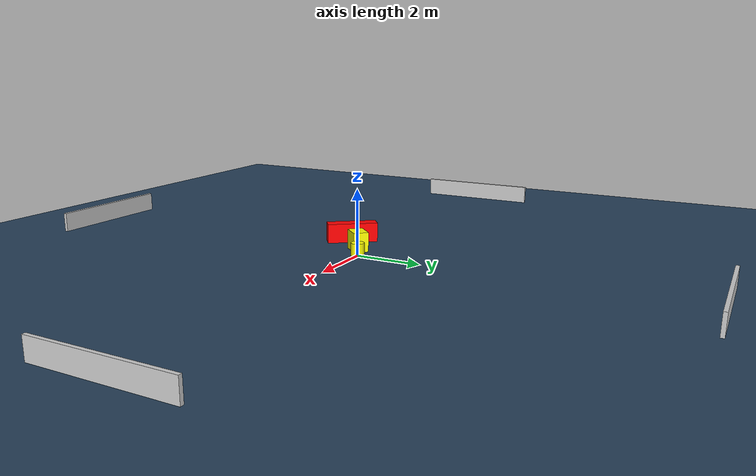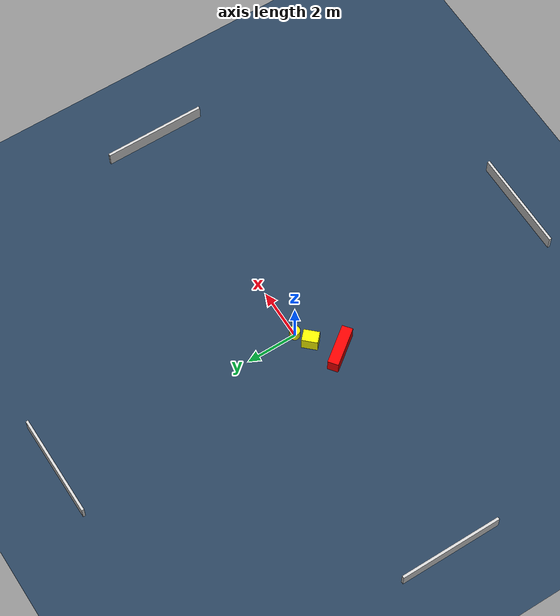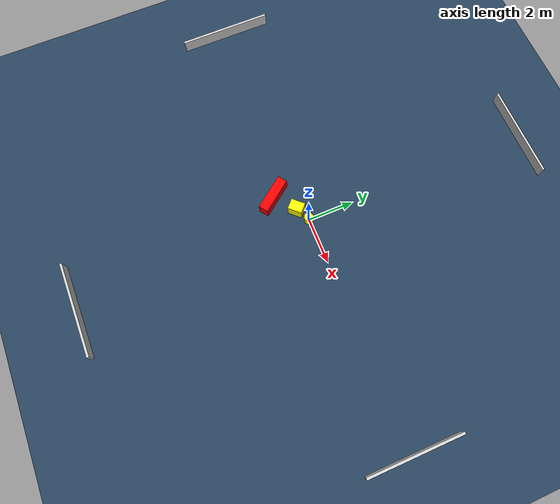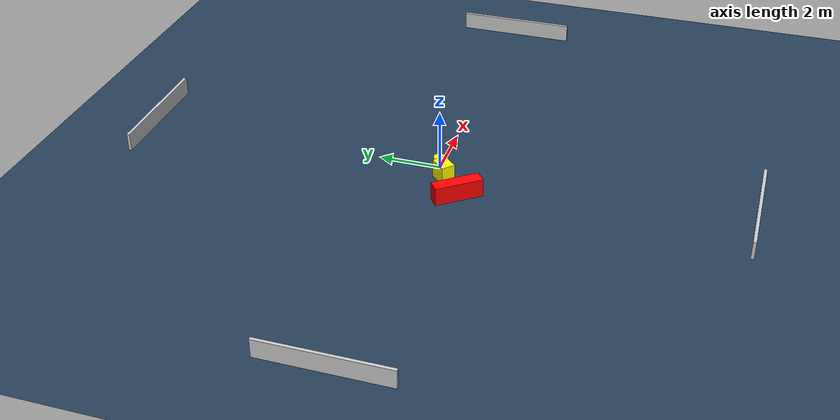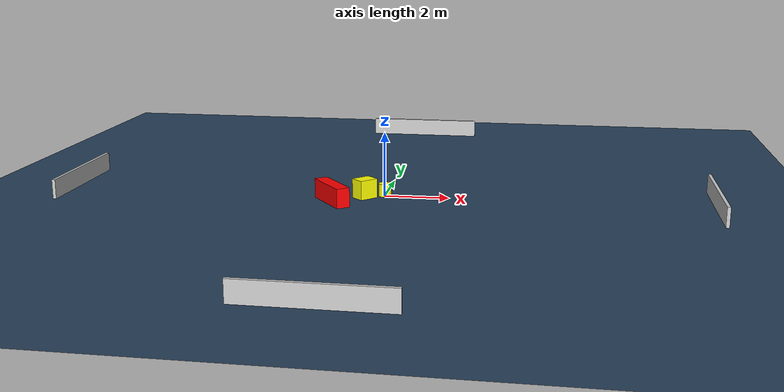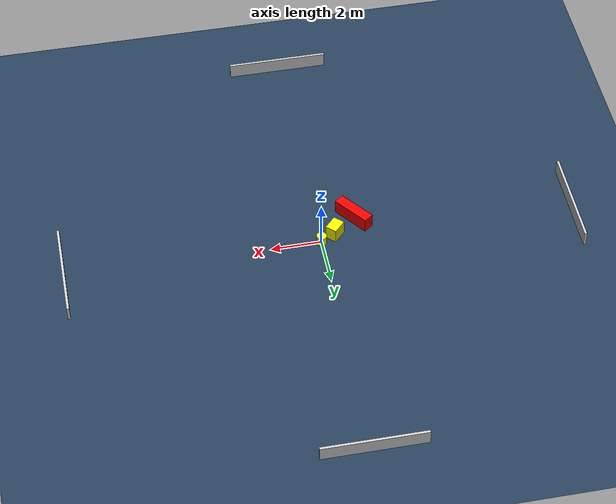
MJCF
<?xml version="1.0" ?>
<mujoco model="generated_environment">
  <option timestep="0.01" integrator="RK4" cone="elliptic"/>
  <default>
    <geom density="1"/>
  </default>
  <asset>
    <texture builtin="gradient" height="3072" name="skybox" rgb1="0.3 0.5 0.7" rgb2="0 0 0" type="skybox" width="512"/>
    <texture builtin="checker" height="300" name="groundplane" rgb1="0.2 0.3 0.4" rgb2="0.1 0.2 0.3" type="2d" width="300"/>
    <material name="groundplane" reflectance="0.2" texrepeat="5 5" texture="groundplane"/>
  </asset>
  <worldbody>
    <light dir="0 0 -1" directional="true" pos="0 0 1.5"/>
    <geom condim="3" friction="0.5 0.005 0.001" material="groundplane" name="floor" pos="0 0 0" size="0 0 0.05" type="plane"/>
    <body name="walls">
      <geom name="wall_1" condim="4" pos="-10.0 0.0 0.3" rgba="0.800000011920929 0.800000011920929 0.800000011920929 1.0" size="0.05 2.0 0.3" type="box"/>
      <geom name="wall_2" condim="4" pos="10.0 0.0 0.3" rgba="0.800000011920929 0.800000011920929 0.800000011920929 1.0" size="0.05 2.0 0.3" type="box"/>
      <geom name="wall_3" condim="4" pos="0.0 -10.0 0.3" rgba="0.800000011920929 0.800000011920929 0.800000011920929 1.0" size="2.0 0.05 0.3" type="box"/>
      <geom name="wall_4" condim="4" pos="0.0 10.0 0.3" rgba="0.800000011920929 0.800000011920929 0.800000011920929 1.0" size="2.0 0.05 0.3" type="box"/>
    </body>
    <body name="robot">
      <joint name="joint_x" type="slide" pos="0 0 0" axis="1 0 0"/>
      <joint name="joint_y" type="slide" pos="0 0 0" axis="0 1 0"/>
      <geom name="robot" type="cylinder" pos="0.0 0.0 0.2" size="0.2 0.2 0.0" mass="5.0" friction="1.0 0.005 0.0001" condim="4" rgba="1.0 1.0 0.0 1.0"/>
    </body>
    <body name="obstacle_1_movable">
      <geom name="obstacle_1_movable" condim="4" pos="-0.5859368791067209 -0.30769266319474803 0.3" euler="0 0 136.6119697769581" friction="0.0 0.005 0.001" rgba="1.0 1.0 0.0 1.0" size="0.2295393393474644 0.3035075128911142 0.3" type="box" mass="0.1"/>
      <joint type="free"/>
    </body>
    <body name="obstacle_2_static">
      <geom name="obstacle_2_static" condim="4" pos="-1.4716517307277281 -1.012950864155168 0.3" euler="0 0 127.24371233498385" friction="0.0 0.005 0.001" rgba="1.0 0.0 0.0 1.0" size="0.7832745346409982 0.20979229720076187 0.3" type="box"/>
    </body>
  </worldbody>
  <actuator>
    <motor name="actuator_x" joint="joint_x" gear="1" ctrlrange="-1 1"/>
    <motor name="actuator_y" joint="joint_y" gear="1" ctrlrange="-1 1"/>
  </actuator>
</mujoco>
